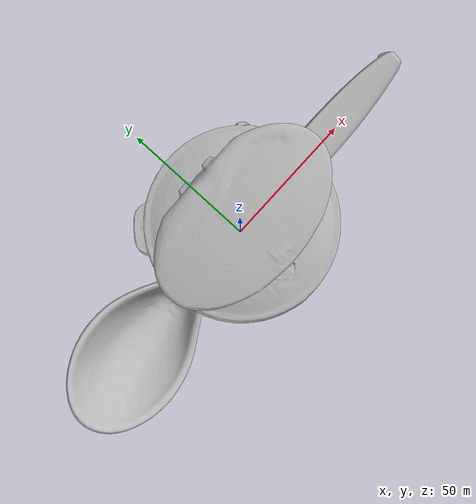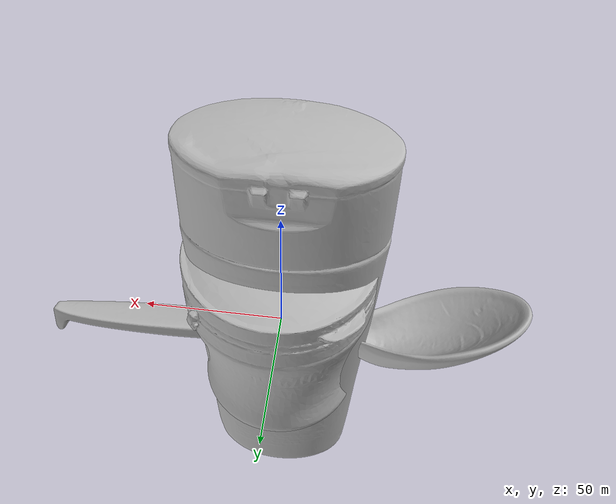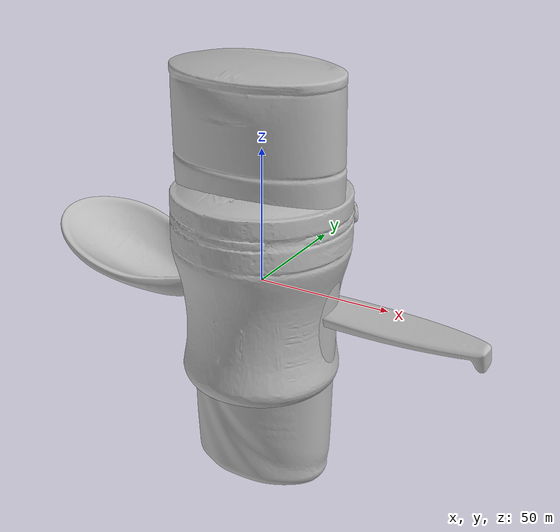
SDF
<sdf version="1.4">
 <world name="default">
  <light name="light1" type="point">
   <pose>0 0 1 0 0 0</pose>
   <diffuse>3 3 3 1</diffuse>
   <specular>3 3 3 1</specular>
  </light>
  <light name="light2" type="point">
   <pose>0 0.5 2 0 0 0</pose>
   <diffuse>1 1 1 1</diffuse>
   <specular>1 1 1 1</specular>
  </light>
  <light name="light3" type="point">
   <pose>0 0.5 2 0 0 0</pose>
   <diffuse>3 3 3 1</diffuse>
   <specular>3 3 3 1</specular>
  </light>
  <scene><ambient>0.7 0.7 0.7</ambient></scene>
  <model name="bottle1">
   <link name="link_bottle1">
    <collision name="default">
     <geometry>
      <mesh><uri>model://green_arrow/collision_meshes/collision.obj</uri><scale>1.0 1.0 1.0</scale></mesh>
     </geometry>
     <surface><friction><ode><mu>0.5</mu><mu2>0.5</mu2></ode></friction></surface>
    </collision>
    <visual name="default">
     <geometry>
      <mesh><uri>model://green_arrow/visual_meshes/visual.dae</uri><scale>1.0 1.0 1.0</scale></mesh>
     </geometry>
    </visual>
    <inertial>
     <mass>0.159866601228714</mass>
     <pose>0.0005358478520065546 -0.0008270691614598036 0.0022109695710241795 -0.0633227561078847 0.012984243694000861 0.6740794776591725</pose>
     <inertia>
      <ixx>0.00011596808</ixx>
      <iyy>0.00011579238</iyy>
      <izz>7.488036e-05</izz>
      <ixy>0</ixy>
      <ixz>0</ixz>
      <iyz>0</iyz>
     </inertia>
    </inertial>
   </link>
   <pose>-0.2989499866962433 0.24862511456012726 0.03903084248304367 0.038517530020631095 0.02462836837136863 0.08350764563240726</pose>
  </model>
  <model name="bottle2">
   <link name="link_bottle2">
    <collision name="default">
     <geometry>
      <mesh><uri>model://conditioner/collision_meshes/collision.obj</uri><scale>1.0 1.0 1.0</scale></mesh>
     </geometry>
     <surface><friction><ode><mu>0.5</mu><mu2>0.5</mu2></ode></friction></surface>
    </collision>
    <visual name="default">
     <geometry>
      <mesh><uri>model://conditioner/visual_meshes/visual.dae</uri><scale>1.0 1.0 1.0</scale></mesh>
     </geometry>
    </visual>
    <inertial>
     <mass>0.1887805312871933</mass>
     <pose>-0.00055994390277192 -0.00017297487647738308 0.004359682556241751 -0.005038374268360293 0.015306043554332214 0.015072361860715313</pose>
     <inertia>
      <ixx>0.00041066532</ixx>
      <iyy>0.00043991112</iyy>
      <izz>6.3318876e-05</izz>
      <ixy>0</ixy>
      <ixz>0</ixz>
      <iyz>0</iyz>
     </inertia>
    </inertial>
   </link>
   <pose>-0.18127018213272095 0.2771298587322235 0.081229567527771 0.0369109161582987 -0.015673999445767743 -0.010409826937761869</pose>
  </model>
  <model name="silverware1">
   <link name="link_silverware1">
    <collision name="default">
     <geometry>
      <mesh><uri>model://doraemon_spoon/collision_meshes/collision.obj</uri><scale>1.0 1.0 1.0</scale></mesh>
     </geometry>
     <surface><friction><ode><mu>0.5</mu><mu2>0.5</mu2></ode></friction></surface>
    </collision>
    <visual name="default">
     <geometry>
      <mesh><uri>model://doraemon_spoon/visual_meshes/visual.dae</uri><scale>1.0 1.0 1.0</scale></mesh>
     </geometry>
    </visual>
    <inertial>
     <mass>0.029215902090072632</mass>
     <pose>-0.022165078669786453 -0.0006374581134878099 -0.003332544816657901 -0.009147069561506448 0.07380416816022378 -0.014123831282405222</pose>
     <inertia>
      <ixx>2.2884674e-06</ixx>
      <iyy>6.499588e-05</iyy>
      <izz>6.610089e-05</izz>
      <ixy>0</ixy>
      <ixz>0</ixz>
      <iyz>0</iyz>
     </inertia>
    </inertial>
   </link>
   <pose>0.18995869159698486 0.28602346777915955 0.0147393262013793 0.2790206118893024 -0.010337294741913321 0.022405469820894763</pose>
  </model>
  <model name="stationery1">
   <link name="link_stationery1">
    <collision name="default">
     <geometry>
      <mesh><uri>model://correction_fuid/collision_meshes/collision.obj</uri><scale>1.0 1.0 1.0</scale></mesh>
     </geometry>
     <surface><friction><ode><mu>0.5</mu><mu2>0.5</mu2></ode></friction></surface>
    </collision>
    <visual name="default">
     <geometry>
      <mesh><uri>model://correction_fuid/visual_meshes/visual.dae</uri><scale>1.0 1.0 1.0</scale></mesh>
     </geometry>
    </visual>
    <inertial>
     <mass>0.02664039097726345</mass>
     <pose>-0.00012557733862195164 -0.0009722907561808825 -0.001618212671019137 -0.010846611490809042 0.019488348158978066 -0.015992455472155966</pose>
     <inertia>
      <ixx>2.5801672e-05</ixx>
      <iyy>1.5615498e-06</iyy>
      <izz>2.6473212e-05</izz>
      <ixy>0</ixy>
      <ixz>0</ixz>
      <iyz>0</iyz>
     </inertia>
    </inertial>
   </link>
   <pose>0.10954215377569199 0.38997435569763184 0.009632827714085579 -0.001727165483900453 -0.056167749168392775 0.08617550349470697</pose>
  </model>
  <model name="bowl1">
   <link name="link_bowl1">
    <collision name="default">
     <geometry>
      <mesh><uri>model://doraemon_bowl/collision_meshes/collision.obj</uri><scale>1.0 1.0 1.0</scale></mesh>
     </geometry>
     <surface><friction><ode><mu>0.5</mu><mu2>0.5</mu2></ode></friction></surface>
    </collision>
    <visual name="default">
     <geometry>
      <mesh><uri>model://doraemon_bowl/visual_meshes/visual.dae</uri><scale>1.0 1.0 1.0</scale></mesh>
     </geometry>
    </visual>
    <inertial>
     <mass>0.0632677748799324</mass>
     <pose>-0.014629557728767395 0.00048571318620815873 -0.0020864882972091436 -0.005093978566849342 -0.10568406006641042 -0.026426380562233804</pose>
     <inertia>
      <ixx>8.773087e-05</ixx>
      <iyy>0.00011545301</iyy>
      <izz>0.00016985848</izz>
      <ixy>0</ixy>
      <ixz>0</ixz>
      <iyz>0</iyz>
     </inertia>
    </inertial>
   </link>
   <pose>0.2601641118526459 -0.25016576051712036 0.025905488058924675 0.00859744272032504 0.006344039441323771 1.2251367317740635e-05</pose>
  </model>
  <model name="cup1">
   <link name="link_cup1">
    <collision name="default">
     <geometry>
      <mesh><uri>model://doraemon_cup/collision_meshes/collision.obj</uri><scale>1.0 1.0 1.0</scale></mesh>
     </geometry>
     <surface><friction><ode><mu>0.5</mu><mu2>0.5</mu2></ode></friction></surface>
    </collision>
    <visual name="default">
     <geometry>
      <mesh><uri>model://doraemon_cup/visual_meshes/visual.dae</uri><scale>1.0 1.0 1.0</scale></mesh>
     </geometry>
    </visual>
    <inertial>
     <mass>0.04278137534856796</mass>
     <pose>-0.0003292987239547074 -0.0016633577179163694 -0.0022522551007568836 0.19498548950287564 -0.013693938110122818 -0.3205458650037051</pose>
     <inertia>
      <ixx>5.8507427e-05</ixx>
      <iyy>5.6580026e-05</iyy>
      <izz>4.623892e-05</izz>
      <ixy>0</ixy>
      <ixz>0</ixz>
      <iyz>0</iyz>
     </inertia>
    </inertial>
   </link>
   <pose>0.24964764714241028 -0.3994556665420532 0.046233389526605606 -0.011321958314813134 -0.00934224481028313 -3.406293707598113e-05</pose>
  </model>
  <model name="plate1">
   <link name="link_plate1">
    <collision name="default">
     <geometry>
      <mesh><uri>model://hello_kitty_plate/collision_meshes/collision.obj</uri><scale>1.0 1.0 1.0</scale></mesh>
     </geometry>
     <surface><friction><ode><mu>0.5</mu><mu2>0.5</mu2></ode></friction></surface>
    </collision>
    <visual name="default">
     <geometry>
      <mesh><uri>model://hello_kitty_plate/visual_meshes/visual.dae</uri><scale>1.0 1.0 1.0</scale></mesh>
     </geometry>
    </visual>
    <inertial>
     <mass>0.03555070236325264</mass>
     <pose>0.0073143006302416325 0.0002893744967877865 -0.0027947186026722193 -0.00010431820965322355 -0.007054446463638022 -0.014449070801334592</pose>
     <inertia>
      <ixx>6.855243e-05</ixx>
      <iyy>0.00012937908</iyy>
      <izz>0.0001964492</izz>
      <ixy>0</ixy>
      <ixz>0</ixz>
      <iyz>0</iyz>
     </inertia>
    </inertial>
   </link>
   <pose>0.010030163452029228 -0.1200423538684845 0.008291450329124928 0.00046606502344750017 0.004173324643421927 -2.4515285000558248e-06</pose>
  </model>
  <model name="box4">
   <link name="link_box4">
    <collision name="default">
     <geometry>
      <mesh><uri>model://wooden_puzzle1/collision_meshes/collision.obj</uri><scale>1.0 1.0 1.0</scale></mesh>
     </geometry>
     <surface><friction><ode><mu>0.5</mu><mu2>0.5</mu2></ode></friction></surface>
    </collision>
    <visual name="default">
     <geometry>
      <mesh><uri>model://wooden_puzzle1/visual_meshes/visual.dae</uri><scale>1.0 1.0 1.0</scale></mesh>
     </geometry>
    </visual>
    <inertial>
     <mass>0.03278602659702301</mass>
     <pose>-0.00017350679263472557 7.972260937094688e-05 -9.191554272547364e-05 -0.07784358361794479 -0.263610796923839 -0.5528741327723476</pose>
     <inertia>
      <ixx>6.1858273e-06</ixx>
      <iyy>6.0667485e-06</iyy>
      <izz>6.139123e-06</izz>
      <ixy>0</ixy>
      <ixz>0</ixz>
      <iyz>0</iyz>
     </inertia>
    </inertial>
   </link>
   <pose>0.14000672101974487 -0.2400062531232834 0.01686667464673519 0.006190129547175618 -0.00970944507041347 -0.00013513269249123907</pose>
  </model>
 </world>
</sdf>
